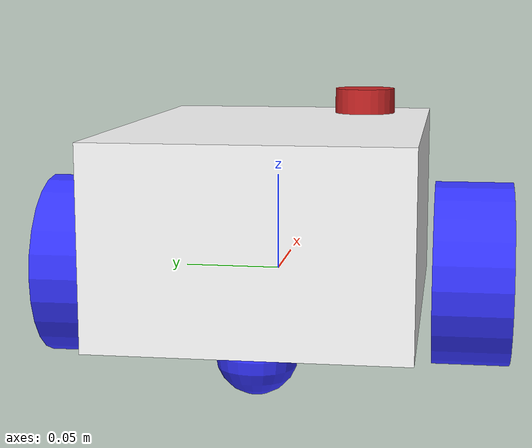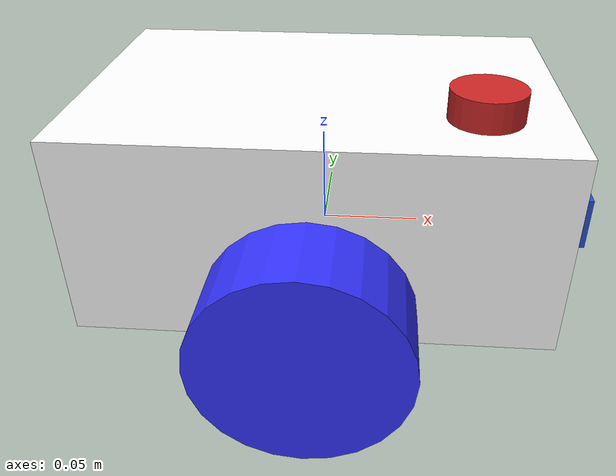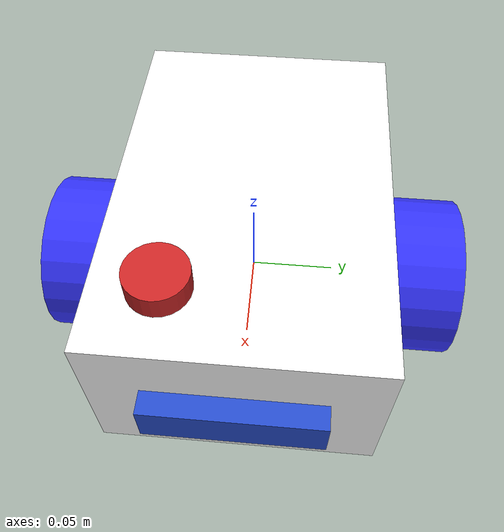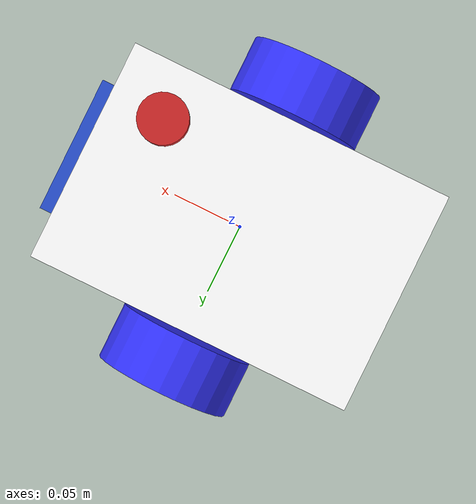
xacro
<?xml version="1.0"?>
<robot xmlns:xacro="http://www.ros.org/wiki/xacro"  name="crab_bot">

    <xacro:include filename="2wd/robot_core.2wd.xacro" />

    <xacro:include filename="2wd/ros2_control.2wd.xacro" />

    <xacro:include filename="accessories/lidar.xacro" />
    <xacro:include filename="accessories/dept_camera.xacro" />
    <xacro:include filename="accessories/imu.xacro" />

</robot>

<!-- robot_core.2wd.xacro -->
<robot xmlns:xacro="http://www.ros.org/wiki/xacro">

    <xacro:include filename="$(find crab_bot)/crabbot_description/macros/inertial_macros.xacro" />
    <xacro:include filename="$(find crab_bot)/crabbot_description/macros/wheel.macros.xacro"/>

    <xacro:property name="chassis_length" value="0.225"/>
    <xacro:property name="chassis_width" value="0.153"/>
    <xacro:property name="chassis_height" value="0.0975"/>
    <xacro:property name="chassis_mass" value="4.0"/>
    <xacro:property name="wheel_radius" value="0.048"/>
    <xacro:property name="wheel_inner_radius" value="0.028"/>
    <xacro:property name="wheel_length" value="0.04"/>
    <xacro:property name="wheel_mass" value="0.5"/>
    <xacro:property name="wheel_separation" value="0.205"/>
    <xacro:property name="wheel_offset_x" value="0"/>
    <xacro:property name="wheel_offset_y" value="${wheel_separation/2}"/>
    <xacro:property name="wheel_offset_z" value="0.0"/>
    <xacro:property name="chassis_offset_z" value="0.02"/>
    <xacro:property name="caster_wheel_radius" value="0.02"/>
    <xacro:property name="caster_wheel_mass" value="0.1"/>
    <xacro:property name="caster_wheel_offset_x" value="0.073"/>
    <xacro:property name="caster_wheel_offset_z" value="${-wheel_radius + caster_wheel_radius + 0.001}"/>

    <material name="white">
        <color rgba="1 1 1 1"/>
    </material>

    <material name="orange">
        <color rgba="1 0.3 0.1 1"/>
    </material>

    <material name="blue">
        <color rgba="0.2 0.2 1 1"/>
    </material>

    <material name="black">
        <color rgba="0 0 0 1"/>
    </material>

    <material name="red">
        <color rgba="1 0 0 1"/>
    </material>

    <!-- BASE LINK -->

    <link name="base_link">

    </link>

    <!-- BASE_FOOTPRINT LINK -->

    <joint name="base_footprint_joint" type="fixed">
        <parent link="base_link"/>
        <child link="base_footprint"/>
        <origin xyz="0 0 -${wheel_radius}" rpy="0 0 0"/>
    </joint>

    <link name="base_footprint">
    </link>

    <!-- CHASSIS LINK -->

    <joint name="chassis_joint" type="fixed">
        <parent link="base_link"/>
        <child link="chassis"/>
        <origin xyz="0 0 ${-chassis_offset_z}"/>
    </joint>

    <link name="chassis">
        <!-- chassis visual -->
        <visual>
            <origin xyz="0 0 ${chassis_height/2}"/>
            <geometry>
                <box size="${chassis_length} ${chassis_width} ${chassis_height}"/>
            </geometry>
            <material name="white"/>
        </visual>
        <!-- chassis interact -->
        <collision>
            <origin xyz="0 0 ${chassis_height/2}"/>
            <geometry>
                <box size="${chassis_length} ${chassis_width} ${chassis_height}"/>
            </geometry>
        </collision>
        <!-- chassis phisical -->
        <xacro:inertial_box mass="${chassis_mass}" x="${chassis_length}" y="${chassis_width}" z="${chassis_height}">
            <origin xyz="0 0 ${chassis_height/2}" rpy="0 0 0"/>
        </xacro:inertial_box>
    </link>

    <gazebo reference="chassis">
        <material>Gazebo/White</material>
    </gazebo>

    <xacro:wheel prefix="right">
        <origin xyz="${wheel_offset_x} ${-wheel_offset_y} ${wheel_offset_z}" rpy="0 0 0" />
    </xacro:wheel>
    <xacro:wheel prefix="left">
        <origin xyz="${wheel_offset_x} ${wheel_offset_y} ${wheel_offset_z}" rpy="0 0 0" />
    </xacro:wheel>

    <!-- Caster wheel link -->

    <joint name="front_caster_wheel_joint" type="fixed">
        <parent link="base_link"/>
        <child link="front_caster_wheel"/>
        <origin xyz="${caster_wheel_offset_x} 0 ${caster_wheel_offset_z}"/>
    </joint>

    <link name="front_caster_wheel">
        <visual>
            <geometry>
                <sphere radius="${caster_wheel_radius}"/>1
            </geometry>
            <material name="blue"/>
        </visual>
        <collision>
            <geometry>
                <sphere radius="${caster_wheel_radius}"/>
            </geometry>
        </collision>
        <xacro:inertial_sphere mass="${caster_wheel_mass}" radius="${caster_wheel_radius}">
            <origin xyz="0 0 0" rpy="0 0 0"/>
        </xacro:inertial_sphere>
    </link>

    <gazebo reference="front_caster_wheel">
        <material>Gazebo/Blue</material>
        <mu1 value="0.001"/>
        <mu2 value="0.001"/>
    </gazebo>

    <joint name="back_caster_wheel_joint" type="fixed">
        <parent link="base_link"/>
        <child link="back_caster_wheel"/>
        <origin xyz="${-caster_wheel_offset_x} 0 ${caster_wheel_offset_z}"/>
    </joint>

    <link name="back_caster_wheel">
        <visual>
            <geometry>
                <sphere radius="${caster_wheel_radius}"/>1
            </geometry>
            <material name="blue"/>
        </visual>
        <collision>
            <geometry>
                <sphere radius="${caster_wheel_radius}"/>
            </geometry>
        </collision>
        <xacro:inertial_sphere mass="${caster_wheel_mass}" radius="${caster_wheel_radius}">
            <origin xyz="0 0 0" rpy="0 0 0"/>
        </xacro:inertial_sphere>
    </link>

    <gazebo reference="back_caster_wheel">
        <material>Gazebo/Blue</material>
        <mu1 value="0.001"/>
        <mu2 value="0.001"/>
    </gazebo>

</robot>

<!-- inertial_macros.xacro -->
<robot xmlns:xacro="http://www.ros.org/wiki/xacro" >

    <!-- Specify some standard inertial calculations https://en.wikipedia.org/wiki/List_of_moments_of_inertia -->
    <!-- These make use of xacro's mathematical functionality -->

    <xacro:macro name="inertial_sphere" params="mass radius *origin">
        <inertial>
            <xacro:insert_block name="origin"/>
            <mass value="${mass}" />
            <inertia ixx="${(2/5) * mass * (radius*radius)}" ixy="0.0" ixz="0.0"
                    iyy="${(2/5) * mass * (radius*radius)}" iyz="0.0"
                    izz="${(2/5) * mass * (radius*radius)}" />
        </inertial>
    </xacro:macro>

    <xacro:macro name="inertial_box" params="mass x y z *origin">
        <inertial>
            <xacro:insert_block name="origin"/>
            <mass value="${mass}" />
            <inertia ixx="${(1/12) * mass * (y*y+z*z)}" ixy="0.0" ixz="0.0"
                    iyy="${(1/12) * mass * (x*x+z*z)}" iyz="0.0"
                    izz="${(1/12) * mass * (x*x+y*y)}" />
        </inertial>
    </xacro:macro>

    <xacro:macro name="inertial_cylinder" params="mass length radius *origin">
        <inertial>
            <xacro:insert_block name="origin"/>
            <mass value="${mass}" />
            <inertia ixx="${(1/12) * mass * (3*radius*radius + length*length)}" ixy="0.0" ixz="0.0"
                    iyy="${(1/12) * mass * (radius*radius + length*length)}" iyz="0.0"
                    izz="${(1/12) * mass * (radius*radius)}" />
        </inertial>
    </xacro:macro>

</robot>

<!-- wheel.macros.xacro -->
<robot xmlns:xacro="http://www.ros.org/wiki/xacro">

    <!-- WHEEL MACROS -->

    <xacro:macro name="wheel" params= "prefix *joint_pose">
        <link name="${prefix}_wheel">
            <visual>
                <origin xyz="0 0 0" rpy="${pi/2} 0 0" />
                <geometry>
                    <cylinder radius="${wheel_radius}" length="${wheel_length}"/>
                </geometry>
                <material name="blue"/>
            </visual>
            <collision>
                <origin xyz="0 0 0" rpy="${pi/2} 0 0" />
                <geometry>
                    <sphere radius="${wheel_radius}"/>
                </geometry>
            </collision>
            <inertial>
                <origin xyz="0 0 0" rpy="0 0 0"/>
                <mass value="${wheel_mass}"/>
                <inertia
                    ixx="${wheel_mass / 12.0 * (3*wheel_radius*wheel_radius + wheel_length*wheel_length)}" ixy="0.0" ixz="0.0"
                    iyy="${wheel_mass / 2.0 * (wheel_radius*wheel_radius + wheel_inner_radius*wheel_inner_radius)}" iyz="0.0"
                    izz="${wheel_mass / 12.0 * (3*wheel_radius*wheel_radius + wheel_length*wheel_length)}"/>
            </inertial>
        </link>

        <joint name="${prefix}_wheel_joint" type="continuous">
            <parent link="base_link"/>
            <child link="${prefix}_wheel"/>
            <xacro:insert_block name="joint_pose"/>
            <axis xyz="0 1 0" rpy="0 0 0"/>
        </joint>

        <gazebo reference="${prefix}_wheel">
            <material>Gazebo/Black</material>
            <mu1 value="1.0"/>
            <mu2 value="0.5"/>
            <kp value="10000000.0" />
            <kd value="1.0" />
            <fdir1 value="1 0 0"/>
        </gazebo>
    </xacro:macro>

</robot>

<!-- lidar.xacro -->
<robot xmlns:xacro="http://www.ros.org/wiki/xacro">

    <!-- Lidar link -->

    <link name="lidar_link">
        <inertial>
            <origin xyz="0 0 0" rpy="0 0 0"/>
            <mass value="0.0"/>
            <inertia ixx="0.00"  ixy="0"  ixz="0" iyy="0.00" iyz="0" izz="0.00" />
        </inertial>

        <collision>
            <origin xyz="0 0 0" rpy="0 0 0"/>
            <geometry>
                <cylinder radius="0.017" length="0.014"/>
            </geometry>
        </collision>

        <visual>
            <origin xyz="0 0 0" rpy="0 0 0"/>
            <geometry>
                <cylinder radius="0.017" length="0.014"/>
            </geometry>
        </visual>
    </link>

    <!-- Lidar Joint -->

    <joint name="lidar_joint" type="fixed">
        <parent link="base_link"/>
        <child link="lidar_link"/>
        <origin xyz="0.074 -0.04 0.0845" rpy="0 0 0"/>
    </joint>

    <!-- Gazebo Plugin -->

    <gazebo reference="lidar_link">
        <material>Gazebo/Red</material>
        <sensor name="lidar" type="ray">
            <always_on>true</always_on>
            <visualize>false</visualize>
            <update_rate>20</update_rate>
            <ray>
                <scan>
                    <horizontal>ss
                    <samples>360</samples>
                    <resolution>1.000000</resolution>
                    <min_angle>0.000000</min_angle>
                    <max_angle>6.280000</max_angle>
                    </horizontal>
                </scan>
                <range>
                    <min>0.2</min>
                    <max>12.0</max>
                    <resolution>0.01</resolution>
                </range>
                <noise>
                    <type>gaussian</type>
                    <mean>0.0</mean>
                    <stddev>0.01</stddev>
                </noise>
            </ray>
            <plugin name="scan" filename="libgazebo_ros_ray_sensor.so">
                <ros>
                    <remapping>~/out:=scan</remapping>
                </ros>
                <output_type>sensor_msgs/LaserScan</output_type>
                <frame_name>lidar_link</frame_name>
            </plugin>
        </sensor>
    </gazebo>

    <joint name="laser_joint" type="fixed">
        <parent link="base_link"/>
        <child link="laser_frame"/>
        <origin xyz="0.074 -0.04 0.0775" rpy="0.0 0.0 0.0"/>
    </joint>

    <link name="laser_frame">
        <visual>
            <origin xyz="0 0 0.007" rpy="0 0 0"/>
            <geometry>
                <cylinder radius="0.017" length="0.014"/>
            </geometry>
            <material name="red"/>
        </visual>
        <collision>
            <origin xyz="0 0 0.007" rpy="0 0 0"/>
            <geometry>
                <cylinder radius="0.017" length="0.014"/>
            </geometry>
        </collision>
        <xacro:inertial_cylinder mass="0.08" length="0.014" radius="0.017">
            <origin xyz="0 0 0.007" rpy="0 0 0"/>
        </xacro:inertial_cylinder>
    </link>

    <gazebo reference="laser_frame">
        <material>Gazebo/Red</material>

        <sensor name="laser" type="ray">
            <pose> 0 0 0 0 0 0 </pose>
            <visualize>true</visualize>
            <update_rate>10</update_rate>
            <ray>
                <scan>
                    <horizontal>
                        <samples>360</samples>
                        <min_angle>-3.14</min_angle>
                        <max_angle>3.14</max_angle>
                    </horizontal>
                </scan>
                <range>
                    <min>0.3</min>
                    <max>12</max>
                </range>
            </ray>
            <plugin name="laser_controller" filename="libgazebo_ros_ray_sensor.so">
                <ros>
                    <argument>~/out:=scan</argument>
                </ros>
                <output_type>sensor_msgs/LaserScan</output_type>
                <frame_name>laser_frame</frame_name>
            </plugin>
        </sensor>
    </gazebo>

</robot>

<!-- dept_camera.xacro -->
<robot xmlns:xacro="http://www.ros.org/wiki/xacro" >

    <!-- Camera Link -->

    <link name="camera_link">
        <visual>
            <origin xyz="0 0 0" rpy="0 0 0"/>
            <geometry>
            <box size="0.025 0.095 0.025"/>
            </geometry>
        </visual>

        <collision>
            <origin xyz="0 0 0" rpy="0 0 0"/>
            <geometry>
            <box size="0.025 0.095 0.025"/>
            </geometry>
        </collision>

        <inertial>
            <origin xyz="0 0 0" rpy="0 0 0"/>
            <mass value="0.035"/>
            <inertia ixx="0.001"  ixy="0"  ixz="0" iyy="0.001" iyz="0" izz="0.001" />
        </inertial>
    </link>

    <!-- Camera Joint -->

    <joint name="camera_joint" type="fixed">
        <parent link="base_link"/>
        <child link="camera_link"/>
        <origin xyz="0.1125 0.0 0.03" rpy="0 0 0"/>
    </joint>

    <!-- Camera depth link -->

    <link name="camera_depth_frame"/>

    <joint name="camera_depth_joint" type="fixed">
        <origin xyz="0 0 0" rpy="${-pi/2} 0 ${-pi/2}"/>
        <parent link="camera_link"/>
        <child link="camera_depth_frame"/>
    </joint>

    <!-- Gazebo Plugin -->

    <gazebo reference="camera_link">
        <material>Gazebo/Blue</material>
        <sensor name="camera" type="depth">
            <visualize>true</visualize>
            <update_rate>30.0</update_rate>
            <camera name="camera">
                <horizontal_fov>1.047198</horizontal_fov>
                <image>
                    <width>640</width>
                    <height>480</height>
                    <format>R8G8B8</format>
                </image>
                <clip>
                    <near>0.05</near>
                    <far>3</far>
                </clip>
            </camera>
            <plugin name="depth_camera_controller" filename="libgazebo_ros_camera.so">
                <baseline>0.2</baseline>
                <alwaysOn>true</alwaysOn>
                <updateRate>0.0</updateRate>
                <frame_name>camera_depth_frame</frame_name>
                <pointCloudCutoff>0.5</pointCloudCutoff>
                <pointCloudCutoffMax>3.0</pointCloudCutoffMax>
                <distortionK1>0</distortionK1>
                <distortionK2>0</distortionK2>
                <distortionK3>0</distortionK3>
                <distortionT1>0</distortionT1>
                <distortionT2>0</distortionT2>
                <CxPrime>0</CxPrime>
                <Cx>0</Cx>
                <Cy>0</Cy>
                <focalLength>0</focalLength>
                <hackBaseline>0</hackBaseline>
            </plugin>
            <plugin name="camera_controller" filename="libgazebo_ros_camera.so">
                <baseline>0.2</baseline>
                <alwaysOn>true</alwaysOn>
                <updateRate>0.0</updateRate>
                <frame_name>camera_depth_frame</frame_name>
                <pointCloudCutoff>0.5</pointCloudCutoff>
                <pointCloudCutoffMax>3.0</pointCloudCutoffMax>
                <distortionK1>0</distortionK1>
                <distortionK2>0</distortionK2>
                <distortionK3>0</distortionK3>
                <distortionT1>0</distortionT1>
                <distortionT2>0</distortionT2>
                <CxPrime>0</CxPrime>
                <Cx>0</Cx>
                <Cy>0</Cy>
                <focalLength>0</focalLength>
                <hackBaseline>0</hackBaseline>
            </plugin>
        </sensor>
    </gazebo>

</robot>

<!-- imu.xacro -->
<robot xmlns:xacro="http://www.ros.org/wiki/xacro" >

    <!-- imu link -->

    <link name="imu_link">
        <visual>
            <geometry>
                <box size="0.02 0.02 0.02"/>
            </geometry>
        </visual>

        <collision>
            <geometry>
                <box size="0.02 0.02 0.02"/>
            </geometry>
        </collision>

    </link>

    <!-- imu joint -->

    <joint name="imu_joint" type="fixed">
        <parent link="base_link"/>
        <child link="imu_link"/>
        <origin xyz="0 0 0.01"/>
    </joint>

    <gazebo reference="imu_link">
        <sensor name="imu_sensor" type="imu">
            <plugin filename="libgazebo_ros_imu_sensor.so" name="imu_plugin">
                <ros>
                    <namespace>/demo</namespace>
                    <remapping>~/out:=imu</remapping>
                </ros>
                <initial_orientation_as_reference>false</initial_orientation_as_reference>
            </plugin>
            <always_on>true</always_on>
            <update_rate>100</update_rate>
            <visualize>true</visualize>
            <imu>
                <angular_velocity>
                    <x>
                        <noise type="gaussian">
                            <mean>0.0</mean>
                            <stddev>2e-4</stddev>
                            <bias_mean>0.0000075</bias_mean>
                            <bias_stddev>0.0000008</bias_stddev>
                        </noise>
                    </x>
                    <y>
                        <noise type="gaussian">
                            <mean>0.0</mean>
                            <stddev>2e-4</stddev>
                            <bias_mean>0.0000075</bias_mean>
                            <bias_stddev>0.0000008</bias_stddev>
                        </noise>
                    </y>
                    <z>
                        <noise type="gaussian">
                            <mean>0.0</mean>
                            <stddev>2e-4</stddev>
                            <bias_mean>0.0000075</bias_mean>
                            <bias_stddev>0.0000008</bias_stddev>
                        </noise>
                    </z>
                </angular_velocity>
                <linear_acceleration>
                    <x>
                        <noise type="gaussian">
                            <mean>0.0</mean>
                            <stddev>1.7e-2</stddev>
                            <bias_mean>0.1</bias_mean>
                            <bias_stddev>0.001</bias_stddev>
                        </noise>
                    </x>
                    <y>
                        <noise type="gaussian">
                            <mean>0.0</mean>
                            <stddev>1.7e-2</stddev>
                            <bias_mean>0.1</bias_mean>
                            <bias_stddev>0.001</bias_stddev>
                        </noise>
                    </y>
                    <z>
                        <noise type="gaussian">
                            <mean>0.0</mean>
                            <stddev>1.7e-2</stddev>
                            <bias_mean>0.1</bias_mean>
                            <bias_stddev>0.001</bias_stddev>
                        </noise>
                    </z>
                </linear_acceleration>
            </imu>
        </sensor>
    </gazebo>

</robot>
